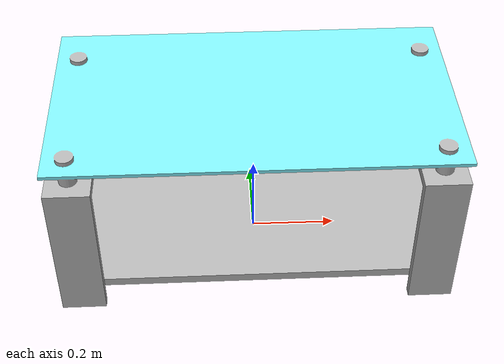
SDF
<?xml version="1.0"?>
<sdf version="1.4">
  <model name="teapoy">
    <static>false</static>
    <link name="link">

      <collision name="collision">
	<pose>0 0 0.2075 0 0 0 </pose>
        <geometry>
		<box><size>0.9 0.5 0.415</size></box>
        </geometry>
      </collision>
      <visual name="visual">
      <pose>-0.45 -0.25 0 0 0 0</pose>
        <geometry>
          <mesh>
            <uri>model://teapoy/meshes/teapoy.dae</uri>
          </mesh>
        </geometry>

      </visual>
    </link>
  </model>
</sdf>
